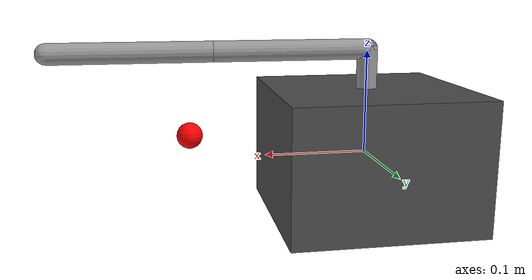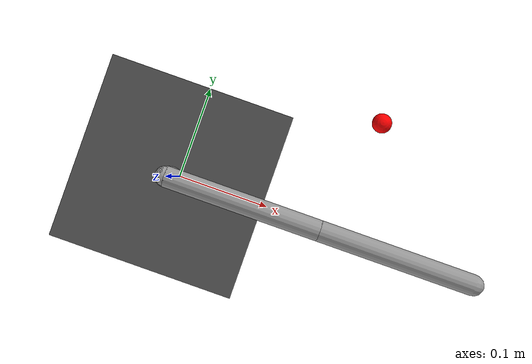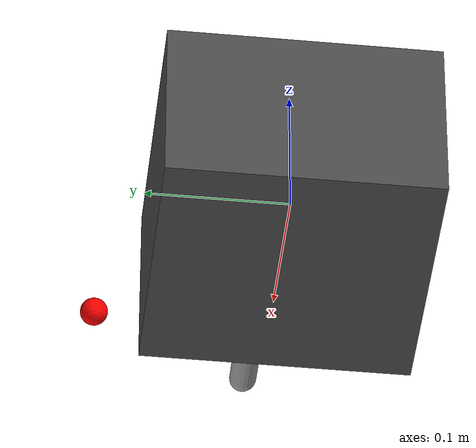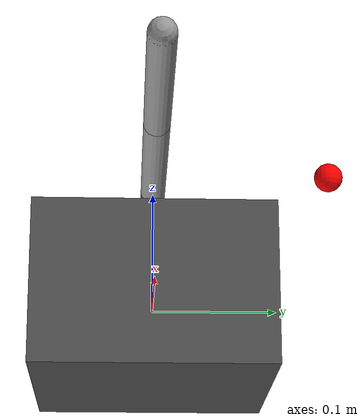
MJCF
<mujoco model="two_link_arm">
    <compiler angle="degree"/>
    <option gravity="0 0 -9.81"/>

    <default>
        <geom type="capsule" size="0.01" rgba="0.6 0.6 0.6 1"/>
        <joint limited="true"/>
    </default>

    <worldbody>
        <!-- Base: 128mm diameter = 64mm radius -->
        <body name="marker_sphere" pos="0.18 0.12 0.05">  <!-- change pos to your desired xyz -->
                <geom type="sphere" size="0.01" rgba="1 0 0 1"/>
        </body>
        <body name="base" pos="0 0 0">
            <geom type="box" size="0.094 0.094 0.064" rgba="0.3 0.3 0.3 1"/> <!-- Flat cube -->
						<joint name="base_rot" type="hinge" axis="0 0 -1" range="0 360" damping="1"/>
            <!-- Lift: 37.8mm fixed vertical offset -->
            <body name="lift" pos="0 0 0.064">
                <geom fromto="0 0 0 0 0 0.0378"/>

                <!-- Link 1 (150mm), rotates upward in X-Z plane -->
                <body name="link1" pos="0 0 0.0378">
                    <joint name="shoulder" type="hinge" axis="0 -1 0" range="0 180" damping="0.30"/>
                    <geom fromto="0 0 0  0.15 0 0"/>

                    <!-- Link 2 (150mm), rotates upward in X-Z plane from end of link1 -->
                    <body name="link2" pos="0.15 0 0">
                        <joint name="elbow" type="hinge" axis="0 -1 0" range="0 135" damping="0.30"/>
                        <geom fromto="0 0 0  0.15 0 0"/>
                        <site name="end_effector" pos="0.15 0 0"/>
                    </body>
                </body>
            </body>
        </body>
    </worldbody>

    <actuator>
        <position joint="base_rot" kp="50"/>
        <position joint="shoulder" kp="25"/>
        <position joint="elbow" kp="25"/>
    </actuator>
</mujoco>
